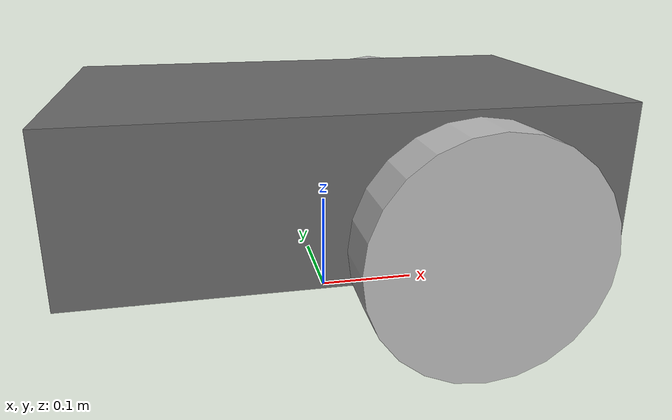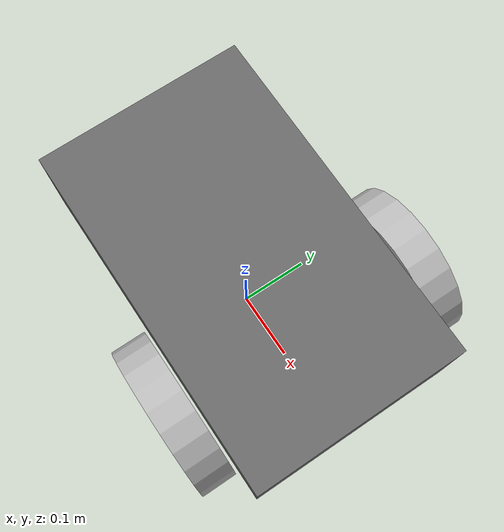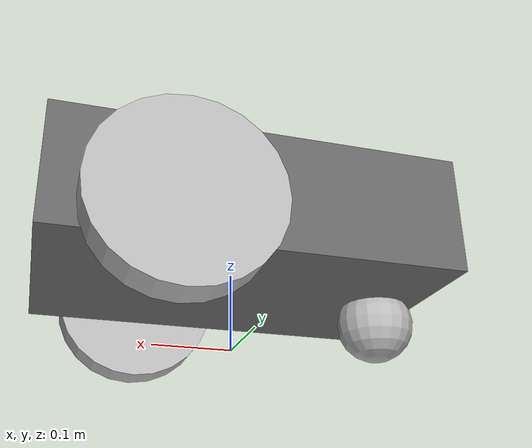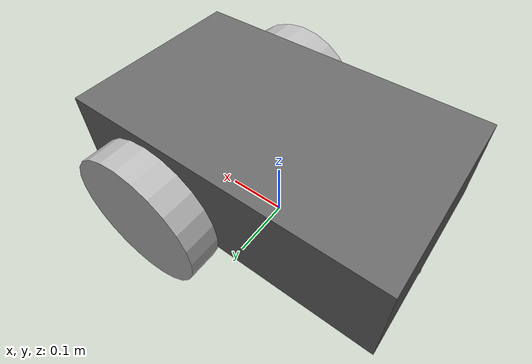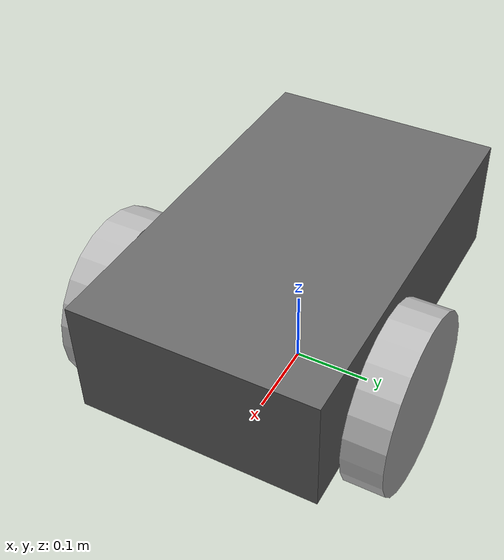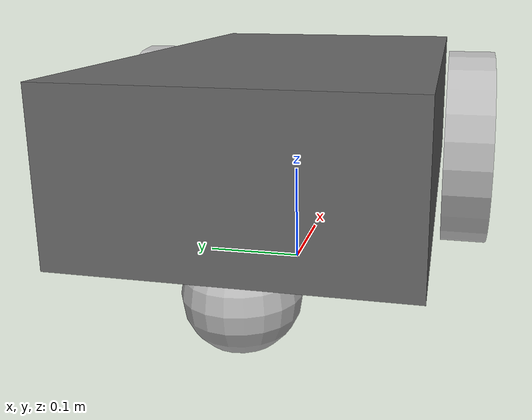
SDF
<?xml version="1.0" ?>
<!-- Copyright 2026 amr-sim-lab contributors. Apache-2.0. See LICENSE. -->
<sdf version="1.10">
  <model name="diffbot">
    <link name="base_link">
      <pose>0 0 0.15 0 0 0</pose>
      <inertial>
        <mass>6.0</mass>
        <inertia>
          <ixx>0.05</ixx><iyy>0.08</iyy><izz>0.1</izz>
          <ixy>0</ixy><ixz>0</ixz><iyz>0</iyz>
        </inertia>
      </inertial>
      <collision name="chassis_collision">
        <geometry><box><size>0.5 0.3 0.15</size></box></geometry>
      </collision>
      <visual name="chassis_visual">
        <geometry><box><size>0.5 0.3 0.15</size></box></geometry>
        <material><ambient>0.3 0.3 0.3 1</ambient><diffuse>0.4 0.4 0.4 1</diffuse></material>
      </visual>
      <collision name="caster_collision">
        <pose>-0.2 0 -0.1 0 0 0</pose>
        <geometry><sphere><radius>0.05</radius></sphere></geometry>
        <surface>
          <friction><ode><mu>0.0</mu><mu2>0.0</mu2></ode></friction>
        </surface>
      </collision>
      <visual name="caster_visual">
        <pose>-0.2 0 -0.1 0 0 0</pose>
        <geometry><sphere><radius>0.05</radius></sphere></geometry>
      </visual>
      <sensor name="lidar" type="gpu_lidar">
        <pose>0.2 0 0.1 0 0 0</pose>
        <topic>scan</topic>
        <update_rate>10</update_rate>
        <always_on>1</always_on>
        <visualize>true</visualize>
        <lidar>
          <scan>
            <horizontal>
              <samples>360</samples>
              <resolution>1</resolution>
              <min_angle>-3.14159</min_angle>
              <max_angle>3.14159</max_angle>
            </horizontal>
          </scan>
          <range><min>0.12</min><max>12.0</max><resolution>0.01</resolution></range>
        </lidar>
      </sensor>
    </link>

    <link name="left_wheel">
      <pose>0.1 0.18 0.11 -1.5707 0 0</pose>
      <inertial>
        <mass>0.5</mass>
        <inertia>
          <ixx>0.001</ixx><iyy>0.001</iyy><izz>0.001</izz>
          <ixy>0</ixy><ixz>0</ixz><iyz>0</iyz>
        </inertia>
      </inertial>
      <collision name="collision">
        <geometry><cylinder><radius>0.11</radius><length>0.05</length></cylinder></geometry>
      </collision>
      <visual name="visual">
        <geometry><cylinder><radius>0.11</radius><length>0.05</length></cylinder></geometry>
      </visual>
    </link>

    <link name="right_wheel">
      <pose>0.1 -0.18 0.11 -1.5707 0 0</pose>
      <inertial>
        <mass>0.5</mass>
        <inertia>
          <ixx>0.001</ixx><iyy>0.001</iyy><izz>0.001</izz>
          <ixy>0</ixy><ixz>0</ixz><iyz>0</iyz>
        </inertia>
      </inertial>
      <collision name="collision">
        <geometry><cylinder><radius>0.11</radius><length>0.05</length></cylinder></geometry>
      </collision>
      <visual name="visual">
        <geometry><cylinder><radius>0.11</radius><length>0.05</length></cylinder></geometry>
      </visual>
    </link>

    <joint name="left_wheel_joint" type="revolute">
      <parent>base_link</parent>
      <child>left_wheel</child>
      <axis>
        <xyz>0 0 1</xyz>
        <limit><lower>-1e16</lower><upper>1e16</upper></limit>
      </axis>
    </joint>
    <joint name="right_wheel_joint" type="revolute">
      <parent>base_link</parent>
      <child>right_wheel</child>
      <axis>
        <xyz>0 0 1</xyz>
        <limit><lower>-1e16</lower><upper>1e16</upper></limit>
      </axis>
    </joint>

    <plugin filename="gz-sim-diff-drive-system" name="gz::sim::systems::DiffDrive">
      <left_joint>left_wheel_joint</left_joint>
      <right_joint>right_wheel_joint</right_joint>
      <wheel_separation>0.36</wheel_separation>
      <wheel_radius>0.11</wheel_radius>
      <frame_id>odom</frame_id>
      <child_frame_id>base_link</child_frame_id>
    </plugin>

    <plugin filename="gz-sim-joint-state-publisher-system"
            name="gz::sim::systems::JointStatePublisher"/>
  </model>
</sdf>
